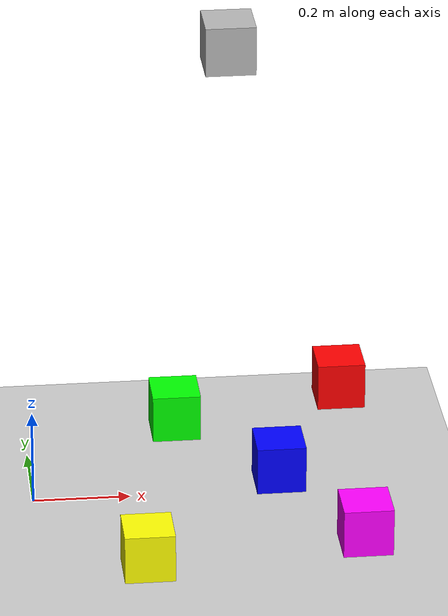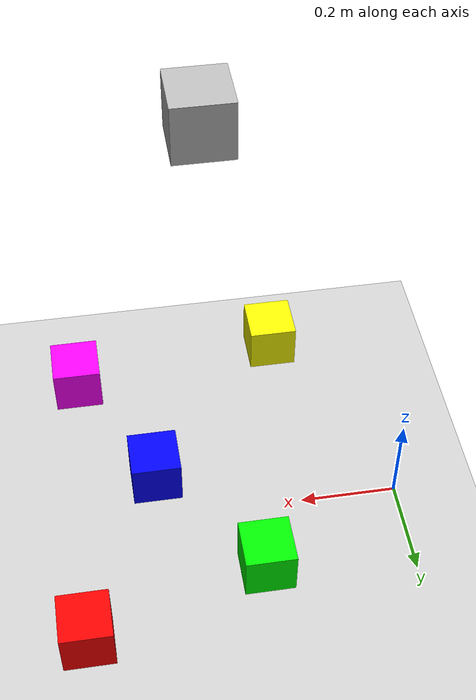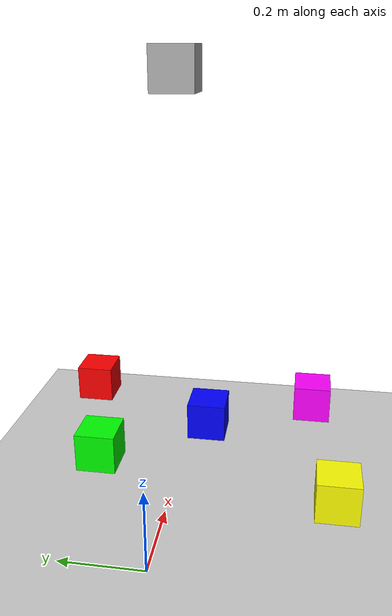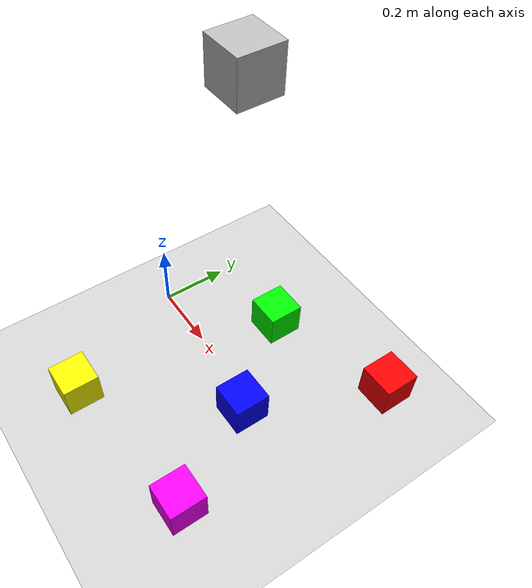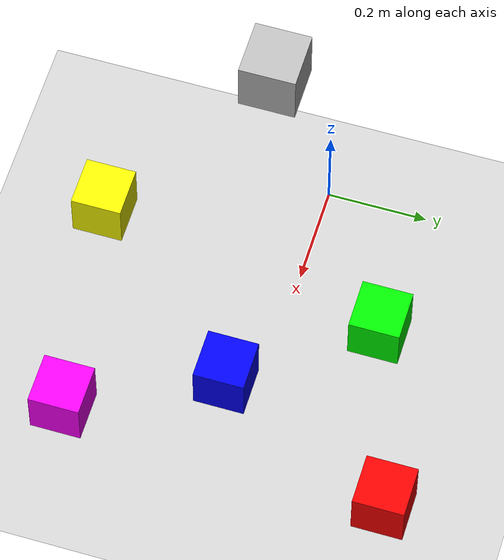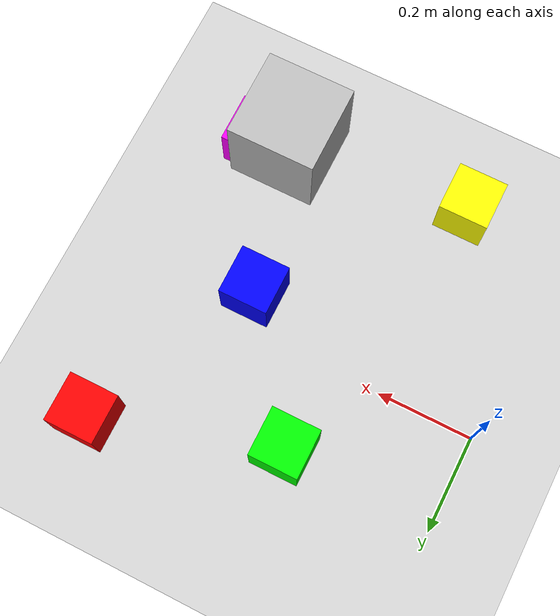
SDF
<?xml version="1.0"?>
<sdf version='1.9'>
  <world name='nlpcobot_world'>
    <!-- PHYSICS -->
    <physics name='1ms' type='ignored'>
      <max_step_size>0.01</max_step_size>
      <real_time_factor>1</real_time_factor>
      <real_time_update_rate>100</real_time_update_rate>
    </physics>

    <!-- PLUGINS -->
    <plugin name='gz::sim::systems::Physics' filename='ignition-gazebo-physics-system' />
    <plugin name='gz::sim::systems::Sensors' filename='ignition-gazebo-sensors-system'>
      <render_engine>ogre</render_engine>
    </plugin>
      <plugin name='gz::sim::systems::UserCommands' filename='ignition-gazebo-user-commands-system'/>
    <plugin name='gz::sim::systems::SceneBroadcaster' filename='ignition-gazebo-scene-broadcaster-system'/>

    <!-- SCENE -->
    <scene>
      <ambient>0.4 0.4 0.4 1</ambient>
      <background>0.7 0.7 0.7 1</background>
      <shadows>true</shadows>
    </scene>

    <!-- GUI -->
    <gui fullscreen='false'>
      <plugin name='3D View' filename='MinimalScene'>
        <ignition-gui>
          <title>3D View</title>
          <property type='bool' key='showTitleBar'>false</property>
          <property type='string' key='state'>docked</property>
        </ignition-gui>
        <engine>ogre2</engine>
        <scene>scene</scene>
        <ambient_light>0.4 0.4 0.4</ambient_light>
        <background_color>0.8 0.8 0.8</background_color>
        <camera_pose>-6 0 6 0 0.5 0</camera_pose>
      </plugin>
      <plugin name='Entity context menu' filename='EntityContextMenuPlugin'>
        <ignition-gui>
          <property key='state' type='string'>floating</property>
          <property key='width' type='double'>5</property>
          <property key='height' type='double'>5</property>
          <property key='showTitleBar' type='bool'>false</property>
        </ignition-gui>
      </plugin>
      <plugin name='Scene Manager' filename='GzSceneManager'>
        <ignition-gui>
          <property key='resizable' type='bool'>false</property>
          <property key='width' type='double'>5</property>
          <property key='height' type='double'>5</property>
          <property key='state' type='string'>floating</property>
          <property key='showTitleBar' type='bool'>false</property>
        </ignition-gui>
      </plugin>
      <plugin name='Interactive view control' filename='InteractiveViewControl'>
        <ignition-gui>
          <property key='resizable' type='bool'>false</property>
          <property key='width' type='double'>5</property>
          <property key='height' type='double'>5</property>
          <property key='state' type='string'>floating</property>
          <property key='showTitleBar' type='bool'>false</property>
        </ignition-gui>
      </plugin>
      <plugin name='Camera Tracking' filename='CameraTracking'>
        <ignition-gui>
          <property key='resizable' type='bool'>false</property>
          <property key='width' type='double'>5</property>
          <property key='height' type='double'>5</property>
          <property key='state' type='string'>floating</property>
          <property key='showTitleBar' type='bool'>false</property>
        </ignition-gui>
      </plugin>
      <plugin name='World control' filename='WorldControl'>
        <ignition-gui>
          <title>World control</title>
          <property type='bool' key='showTitleBar'>false</property>
          <property type='bool' key='resizable'>false</property>
          <property type='double' key='height'>72</property>
          <property type='double' key='width'>121</property>
          <property type='double' key='z'>1</property>
          <property type='string' key='state'>floating</property>
          <anchors target='3D View'>
            <line own='left' target='left'/>
            <line own='bottom' target='bottom'/>
          </anchors>
        </ignition-gui>
        <play_pause>true</play_pause>
        <step>true</step>
        <start_paused>true</start_paused>
        <use_event>true</use_event>
      </plugin>
      <plugin name='World stats' filename='WorldStats'>
        <ignition-gui>
          <title>World stats</title>
          <property type='bool' key='showTitleBar'>false</property>
          <property type='bool' key='resizable'>false</property>
          <property type='double' key='height'>110</property>
          <property type='double' key='width'>290</property>
          <property type='double' key='z'>1</property>
          <property type='string' key='state'>floating</property>
          <anchors target='3D View'>
            <line own='right' target='right'/>
            <line own='bottom' target='bottom'/>
          </anchors>
        </ignition-gui>
        <sim_time>true</sim_time>
        <real_time>true</real_time>
        <real_time_factor>true</real_time_factor>
        <iterations>true</iterations>
      </plugin>
      <plugin name='Image Display' filename='ImageDisplay'>
        <ignition-gui>
          <property key='state' type='string'>docked</property>
        </ignition-gui>
      </plugin>
      <plugin name='Component inspector' filename='ComponentInspector'>
        <ignition-gui>
          <property type='string' key='state'>docked</property>
        </ignition-gui>
      </plugin>
      <plugin name='Entity tree' filename='EntityTree'>
        <ignition-gui>
          <property type='string' key='state'>docked</property>
        </ignition-gui>
      </plugin>
    </gui>

    <!-- GRAVITY -->
    <gravity>0 0 -9.8</gravity>

    <!-- MAGNETIC FIELD -->
    <magnetic_field>6e-06 2.3e-05 -4.2e-05</magnetic_field>

    <!-- ATMOSPHERE -->
    <atmosphere type='adiabatic' />

    <!-- CAMERA -->
    <model name='camera'>
      <pose>0.4 0.0 1.0 -3.14159 1.57079 -3.14159</pose>
      <link name='link'>
        <pose>0 0 0 0 0 0</pose>
        <inertial>
          <mass>0.1</mass>
          <inertia>
            <ixx>0.000166667</ixx>
            <iyy>0.000166667</iyy>
            <izz>0.000166667</izz>
            <ixy>0</ixy>
            <ixz>0</ixz>
            <iyz>0</iyz>
          </inertia>
          <pose>0 0 0 0 0 0</pose>
        </inertial>
        <collision name='collision'>
          <geometry>
            <box>
              <size>0.1 0.1 0.1</size>
            </box>
          </geometry>
        </collision>
        <visual name='visual'>
          <geometry>
            <box>
              <size>0.1 0.1 0.1</size>
            </box>
          </geometry>
        </visual>
        <sensor name='camera_sensor' type='camera'>
          <pose>0 0 0 0 0 0</pose>
          <topic>camera</topic>
          <update_rate>30</update_rate>
          <camera name='__default__'>
            <pose>0 0 0 0 0 0</pose>
            <horizontal_fov>1.04699</horizontal_fov>
            <image>
              <width>640</width>
              <height>480</height>
              <format>RGB_INT8</format>
              <anti_aliasing>4</anti_aliasing>
            </image>
            <camera_info_topic>__default__</camera_info_topic>
            <clip>
              <near>0.1</near>
              <far>100</far>
            </clip>
            <noise>
              <type>none</type>
              <mean>0</mean>
              <stddev>0</stddev>
            </noise>
            <distortion>
              <k1>0</k1>
              <k2>0</k2>
              <k3>0</k3>
              <p1>0</p1>
              <p2>0</p2>
              <center>0.5 0.5</center>
            </distortion>
            <lens>
              <type>stereographic</type>
              <scale_to_hfov>true</scale_to_hfov>
              <cutoff_angle>1.5708</cutoff_angle>
              <env_texture_size>256</env_texture_size>
            </lens>
            <optical_frame_id></optical_frame_id>
          </camera>
        </sensor>
      </link>
      <static>true</static>
    </model>

    <!-- GROUND -->
    <model name='ground_plane'>
      <static>true</static>
      <link name='link'>
        <collision name='collision'>
          <geometry>
            <plane>
              <normal>0 0 1</normal>
              <size>20 20</size>
            </plane>
          </geometry>
          <surface>
            <friction>
              <ode />
            </friction>
            <bounce />
            <contact />
          </surface>
        </collision>
        <visual name='visual'>
          <geometry>
            <plane>
              <normal>0 0 1</normal>
              <size>20 20</size>
            </plane>
          </geometry>
          <material>
            <ambient>0.8 0.8 0.8 1</ambient>
            <diffuse>0.8 0.8 0.8 1</diffuse>
            <specular>0.8 0.8 0.8 1</specular>
          </material>
        </visual>
        <pose>0 0 0 0 -0 0</pose>
        <inertial>
          <pose>0 0 0 0 -0 0</pose>
          <mass>1</mass>
          <inertia>
            <ixx>1</ixx>
            <ixy>0</ixy>
            <ixz>0</ixz>
            <iyy>1</iyy>
            <iyz>0</iyz>
            <izz>1</izz>
          </inertia>
        </inertial>
        <enable_wind>false</enable_wind>
      </link>
      <pose>0 0 0 0 -0 0</pose>
      <self_collide>false</self_collide>
    </model>

    <!-- A BUNCH OF OBJECTS -->
    <model name='box1'>
      <pose>0.67 0.3 0.1 0 -0 0</pose>
      <link name='box1_link'>
        <inertial>
          <inertia>
            <ixx>0.16666</ixx>
            <ixy>0</ixy>
            <ixz>0</ixz>
            <iyy>0.16666</iyy>
            <iyz>0</iyz>
            <izz>0.16666</izz>
          </inertia>
          <mass>0.1</mass>
          <pose>0 0 0 0 -0 0</pose>
        </inertial>
        <collision name='box1_collision'>
          <geometry>
            <box>
              <size>0.1 0.1 0.1</size>
            </box>
          </geometry>
          <surface>
            <friction>
              <ode />
            </friction>
            <bounce />
            <contact />
          </surface>
        </collision>
        <visual name='box1_visual'>
          <geometry>
            <box>
              <size>0.1 0.1 0.1</size>
            </box>
          </geometry>
          <material>
            <ambient>1 0 0 1</ambient>
            <diffuse>1 0 0 1</diffuse>
            <specular>1 0 0 1</specular>
          </material>
        </visual>
        <pose>0 0 0 0 -0 0</pose>
        <enable_wind>false</enable_wind>
      </link>
      <static>false</static>
      <self_collide>false</self_collide>
    </model>
    <model name='box2'>
      <pose>0.31 0.19 0.1 0 -0 0</pose>
      <link name='box2_link'>
        <inertial>
          <inertia>
            <ixx>0.16666</ixx>
            <ixy>0</ixy>
            <ixz>0</ixz>
            <iyy>0.16666</iyy>
            <iyz>0</iyz>
            <izz>0.16666</izz>
          </inertia>
          <mass>0.1</mass>
          <pose>0 0 0 0 -0 0</pose>
        </inertial>
        <collision name='box2_collision'>
          <geometry>
            <box>
              <size>0.1 0.1 0.1</size>
            </box>
          </geometry>
          <surface>
            <friction>
              <ode />
            </friction>
            <bounce />
            <contact />
          </surface>
        </collision>
        <visual name='box2_visual'>
          <geometry>
            <box>
              <size>0.1 0.1 0.1</size>
            </box>
          </geometry>
          <material>
            <ambient>0 1 0 1</ambient>
            <diffuse>0 1 0 1</diffuse>
            <specular>0 1 0 1</specular>
          </material>
        </visual>
        <pose>0 0 0 0 -0 0</pose>
        <enable_wind>false</enable_wind>
      </link>
      <static>false</static>
      <self_collide>false</self_collide>
    </model>
    <model name='box3'>
      <pose>0.5 -0.06 0.1 0 -0 0</pose>
      <link name='box3_link'>
        <inertial>
          <inertia>
            <ixx>0.16666</ixx>
            <ixy>0</ixy>
            <ixz>0</ixz>
            <iyy>0.16666</iyy>
            <iyz>0</iyz>
            <izz>0.16666</izz>
          </inertia>
          <mass>0.1</mass>
          <pose>0 0 0 0 -0 0</pose>
        </inertial>
        <collision name='box3_collision'>
          <geometry>
            <box>
              <size>0.1 0.1 0.1</size>
            </box>
          </geometry>
          <surface>
            <friction>
              <ode />
            </friction>
            <bounce />
            <contact />
          </surface>
        </collision>
        <visual name='box3_visual'>
          <geometry>
            <box>
              <size>0.1 0.1 0.1</size>
            </box>
          </geometry>
          <material>
            <ambient>0 0 1 1</ambient>
            <diffuse>0 0 1 1</diffuse>
            <specular>0 0 1 1</specular>
          </material>
        </visual>
        <pose>0 0 0 0 -0 0</pose>
        <enable_wind>false</enable_wind>
      </link>
      <static>false</static>
      <self_collide>false</self_collide>
    </model>
    <model name='box4'>
      <pose>0.2 -0.4 0.1 0 -0 0</pose>
      <link name='box4_link'>
        <inertial>
          <inertia>
            <ixx>0.16666</ixx>
            <ixy>0</ixy>
            <ixz>0</ixz>
            <iyy>0.16666</iyy>
            <iyz>0</iyz>
            <izz>0.16666</izz>
          </inertia>
          <mass>0.1</mass>
          <pose>0 0 0 0 -0 0</pose>
        </inertial>
        <collision name='box4_collision'>
          <geometry>
            <box>
              <size>0.1 0.1 0.1</size>
            </box>
          </geometry>
          <surface>
            <friction>
              <ode />
            </friction>
            <bounce />
            <contact />
          </surface>
        </collision>
        <visual name='box4_visual'>
          <geometry>
            <box>
              <size>0.1 0.1 0.1</size>
            </box>
          </geometry>
          <material>
            <ambient>1 1 0 1</ambient>
            <diffuse>1 1 0 1</diffuse>
            <specular>1 1 0 1</specular>
          </material>
        </visual>
        <pose>0 0 0 0 -0 0</pose>
        <enable_wind>false</enable_wind>
      </link>
      <static>false</static>
      <self_collide>false</self_collide>
    </model>
    <model name='box5'>
      <pose>0.64 -0.34 0.1 0 -0 0</pose>
      <link name='box5_link'>
        <inertial>
          <inertia>
            <ixx>0.16666</ixx>
            <ixy>0</ixy>
            <ixz>0</ixz>
            <iyy>0.16666</iyy>
            <iyz>0</iyz>
            <izz>0.16666</izz>
          </inertia>
          <mass>0.1</mass>
          <pose>0 0 0 0 -0 0</pose>
        </inertial>
        <collision name='box5_collision'>
          <geometry>
            <box>
              <size>0.1 0.1 0.1</size>
            </box>
          </geometry>
          <surface>
            <friction>
              <ode />
            </friction>
            <bounce />
            <contact />
          </surface>
        </collision>
        <visual name='box5_visual'>
          <geometry>
            <box>
              <size>0.1 0.1 0.1</size>
            </box>
          </geometry>
          <material>
            <ambient>1 0 1 1</ambient>
            <diffuse>1 0 1 1</diffuse>
            <specular>1 0 1 1</specular>
          </material>
        </visual>
        <pose>0 0 0 0 -0 0</pose>
        <enable_wind>false</enable_wind>
      </link>
      <static>false</static>
      <self_collide>false</self_collide>
    </model>

    <!-- LIGHT SOURCE -->
    <light name='sun' type='directional'>
      <pose>10 10 10 0 -0 0</pose>
      <cast_shadows>true</cast_shadows>
      <intensity>1</intensity>
      <direction>-0.5 0.1 -0.9</direction>
      <diffuse>0.8 0.8 0.8 1</diffuse>
      <specular>0.2 0.2 0.2 1</specular>
      <attenuation>
        <range>1000</range>
        <linear>0.01</linear>
        <constant>0.90000000000000002</constant>
        <quadratic>0.001</quadratic>
      </attenuation>
      <spot>
        <inner_angle>0</inner_angle>
        <outer_angle>0</outer_angle>
        <falloff>0</falloff>
      </spot>
    </light>

  </world>
</sdf>
